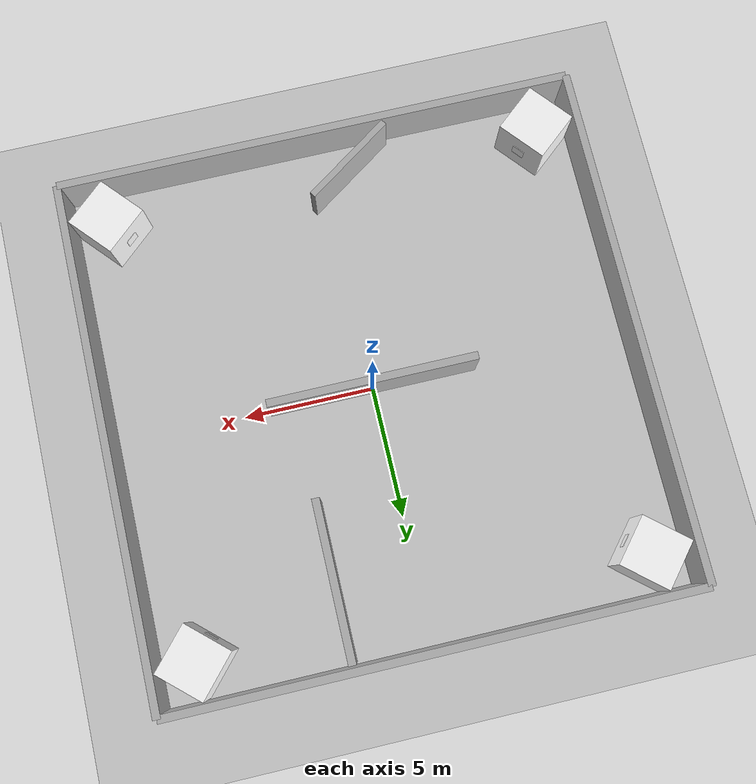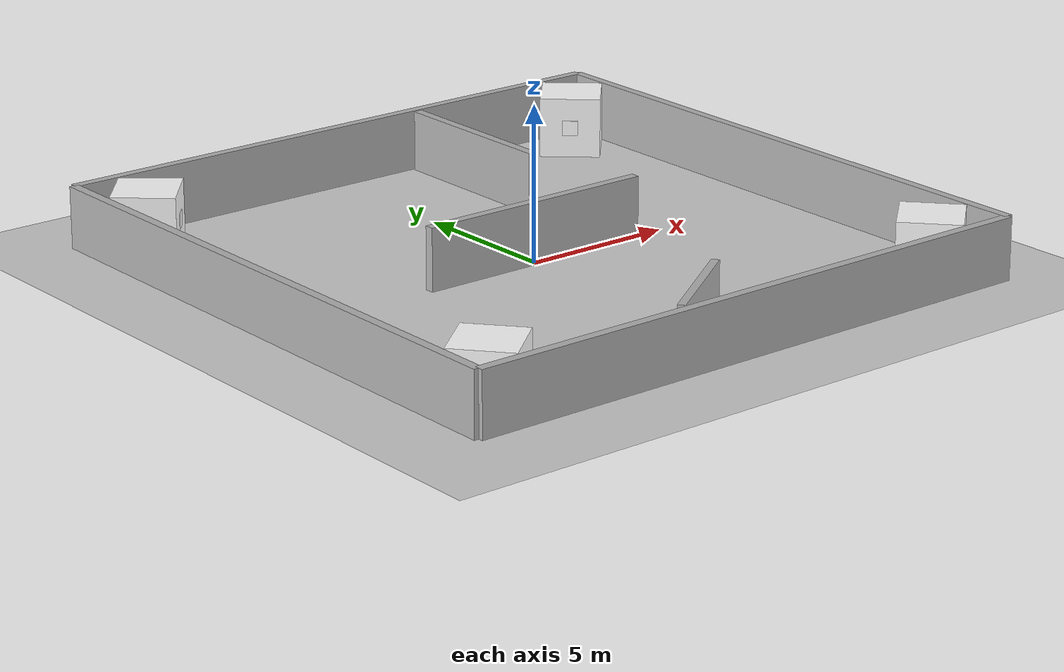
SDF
<?xml version="1.0"?>
<sdf version='1.10'>
  <world name='empty'>
    <physics name='1ms' type='ignored'>
      <max_step_size>0.001</max_step_size>
      <real_time_factor>1</real_time_factor>
      <real_time_update_rate>1000</real_time_update_rate>
    </physics>
    <plugin name='gz::sim::systems::Physics' filename='gz-sim-physics-system'/>
    <plugin name='gz::sim::systems::UserCommands' filename='gz-sim-user-commands-system'/>
    <plugin name='gz::sim::systems::SceneBroadcaster' filename='gz-sim-scene-broadcaster-system'/>
    <plugin name='gz::sim::systems::Contact' filename='gz-sim-contact-system'/>
    <gravity>0 0 -9.8</gravity>
    <magnetic_field>5.56e-06 2.28e-05 -4.23e-05</magnetic_field>
    <atmosphere type='adiabatic'/>
    <scene>
      <ambient>0.4 0.4 0.4 1</ambient>
      <background>0.7 0.7 0.7 1</background>
      <shadows>true</shadows>
    </scene>

    <!-- ground unchanged -->
    <model name='ground_plane'>
      <static>true</static>
      <link name='link'>
        <collision name='collision'>
          <geometry>
            <plane>
              <normal>0 0 1</normal>
              <size>100 100</size>
            </plane>
          </geometry>
        </collision>
        <visual name='visual'>
          <geometry>
            <plane>
              <normal>0 0 1</normal>
              <size>100 100</size>
            </plane>
          </geometry>
          <material>
            <ambient>0.8 0.8 0.8 1</ambient>
            <diffuse>0.8 0.8 0.8 1</diffuse>
            <specular>0.8 0.8 0.8 1</specular>
          </material>
        </visual>
      </link>
    </model>

    <model name='wall_north'>
      <static>true</static>
      <pose>0 10 1 0 0 0</pose>
      <link name='link'>
        <visual name='visual'>
          <geometry><box><size>20 0.3 2</size></box></geometry>
          <material>
            <ambient>0.7 0.7 0.7 1</ambient>
            <diffuse>0.7 0.7 0.7 1</diffuse>
            <specular>0.1 0.1 0.1 1</specular>
          </material>
        </visual>
        <collision name='collision'>
          <geometry><box><size>20 0.3 2</size></box></geometry>
        </collision>
      </link>
    </model>

    <model name='wall_south'>
      <static>true</static>
      <pose>0 -10 1 0 0 0</pose>
      <link name='link'>
        <visual name='visual'>
          <geometry><box><size>20 0.3 2</size></box></geometry>
          <material>
            <ambient>0.7 0.7 0.7 1</ambient>
            <diffuse>0.7 0.7 0.7 1</diffuse>
            <specular>0.1 0.1 0.1 1</specular>
          </material>
        </visual>
        <collision name='collision'>
          <geometry><box><size>20 0.3 2</size></box></geometry>
        </collision>
      </link>
    </model>

    <model name='wall_east'>
      <static>true</static>
      <pose>10 0 1 0 0 0</pose>
      <link name='link'>
        <visual name='visual'>
          <geometry><box><size>0.3 20 2</size></box></geometry>
          <material>
            <ambient>0.7 0.7 0.7 1</ambient>
            <diffuse>0.7 0.7 0.7 1</diffuse>
            <specular>0.1 0.1 0.1 1</specular>
          </material>
        </visual>
        <collision name='collision'>
          <geometry><box><size>0.3 20 2</size></box></geometry>
        </collision>
      </link>
    </model>

    <model name='wall_west'>
      <static>true</static>
      <pose>-10 0 1 0 0 0</pose>
      <link name='link'>
        <visual name='visual'>
          <geometry><box><size>0.3 20 2</size></box></geometry>
          <material>
            <ambient>0.7 0.7 0.7 1</ambient>
            <diffuse>0.7 0.7 0.7 1</diffuse>
            <specular>0.1 0.1 0.1 1</specular>
          </material>
        </visual>
        <collision name='collision'>
          <geometry><box><size>0.3 20 2</size></box></geometry>
        </collision>
      </link>
    </model>

    <model name='inner_wall_1'>
      <static>true</static>
      <pose>0 0 1 0 0 0</pose>
      <link name='link'>
        <visual name='visual'>
          <geometry><box><size>8 0.3 2</size></box></geometry>
          <material>
            <ambient>0.7 0.7 0.7 1</ambient>
            <diffuse>0.7 0.7 0.7 1</diffuse>
            <specular>0.1 0.1 0.1 1</specular>
          </material>
        </visual>
        <collision name='collision'>
          <geometry><box><size>8 0.3 2</size></box></geometry>
        </collision>
      </link>
    </model>

    <model name='inner_wall_2'>
      <static>true</static>
      <pose>3 6.76747 1 0 0 0</pose>
      <link name='link'>
        <visual name='visual'>
          <geometry><box><size>0.3 6 2</size></box></geometry>
          <material>
            <ambient>0.7 0.7 0.7 1</ambient>
            <diffuse>0.7 0.7 0.7 1</diffuse>
            <specular>0.1 0.1 0.1 1</specular>
          </material>
        </visual>
        <collision name='collision'>
          <geometry><box><size>0.3 6 2</size></box></geometry>
        </collision>
      </link>
    </model>

    <model name='inner_wall_3'>
      <static>true</static>
      <pose>-1.0469 -8.58647 1 0 0 0.6</pose>
      <link name='link'>
        <visual name='visual'>
          <geometry><box><size>4 0.25 2</size></box></geometry>
          <material>
            <ambient>0.7 0.7 0.7 1</ambient>
            <diffuse>0.7 0.7 0.7 1</diffuse>
            <specular>0.1 0.1 0.1 1</specular>
          </material>
        </visual>
        <collision name='collision'>
          <geometry><box><size>4 0.25 2</size></box></geometry>
        </collision>
      </link>
    </model>

    <model name='aruco_box'>
      <pose>-8.40 8.40 1.0 0 0 -0.70</pose>
      <link name="box_link">
        <inertial>
          <mass>10.0</mass>
          <inertia> <ixx>1.66</ixx><ixy>0</ixy><ixz>0</ixz>
            <iyy>1.66</iyy><iyz>0</iyz>
            <izz>1.66</izz>
          </inertia>
        </inertial>
        <visual name="visual">
          <geometry><box><size>2.0 2.0 2.0</size></box></geometry>
          <material><ambient>1 1 1 1</ambient><diffuse>1 1 1 1</diffuse></material>
        </visual>
        <collision name="collision">
          <geometry><box><size>2.0 2.0 2.0</size></box></geometry>
        </collision>
      </link>
      <include>
        <uri>model://aruco_marker_0</uri>
        <name>marker_0</name>
        <pose>1.01 0 0 3.14159 1.5707 0</pose>
      </include>
      <joint name="joint_0" type="fixed">
        <parent>box_link</parent>
        <child>marker_0::link</child>
      </joint>
    </model>

    <model name='aruco_box_1'>
      <pose>8.40 8.40 1.0 0 0 -2.30</pose>
      <link name="box_link">
        <inertial>
          <mass>10.0</mass>
          <inertia>
            <ixx>1.66</ixx><ixy>0</ixy><ixz>0</ixz>
            <iyy>1.66</iyy><iyz>0</iyz>
            <izz>1.66</izz>
          </inertia>
        </inertial>
        <visual name="visual">
          <geometry><box><size>2.0 2.0 2.0</size></box></geometry>
          <material><ambient>1 1 1 1</ambient><diffuse>1 1 1 1</diffuse></material>
        </visual>
        <collision name="collision">
          <geometry><box><size>2.0 2.0 2.0</size></box></geometry>
        </collision>
      </link>
      <include>
        <uri>model://aruco_marker_1</uri>
        <name>marker_1</name>
        <pose>1.01 0 0 3.14159 1.5707 0</pose>
      </include>
      <joint name="joint_1" type="fixed">
        <parent>box_link</parent>
        <child>marker_1::link</child>
      </joint>
    </model>

    <model name='aruco_box_2'>
      <pose>8.40 -8.40 1.0 0 0 2.30</pose>
      <link name="box_link">
        <inertial>
          <mass>10.0</mass>
          <inertia>
            <ixx>1.66</ixx><ixy>0</ixy><ixz>0</ixz>
            <iyy>1.66</iyy><iyz>0</iyz>
            <izz>1.66</izz>
          </inertia>
        </inertial>
        <visual name="visual">
          <geometry><box><size>2.0 2.0 2.0</size></box></geometry>
          <material><ambient>1 1 1 1</ambient><diffuse>1 1 1 1</diffuse></material>
        </visual>
        <collision name="collision">
          <geometry><box><size>2.0 2.0 2.0</size></box></geometry>
        </collision>
      </link>
      <include>
        <uri>model://aruco_marker_2</uri>
        <name>marker_2</name>
        <pose>1.01 0 0 3.14159 1.5707 0</pose>
      </include>
      <joint name="joint_2" type="fixed">
        <parent>box_link</parent>
        <child>marker_2::link</child>
      </joint>
    </model>

    <model name='aruco_box_3'>
      <pose>-8.40 -8.40 1.0 0 0 0.70</pose>
      <link name="box_link">
        <inertial>
          <mass>10.0</mass>
          <inertia>
            <ixx>1.66</ixx><ixy>0</ixy><ixz>0</ixz>
            <iyy>1.66</iyy><iyz>0</iyz>
            <izz>1.66</izz>
          </inertia>
        </inertial>
        <visual name="visual">
          <geometry><box><size>2.0 2.0 2.0</size></box></geometry>
          <material><ambient>1 1 1 1</ambient><diffuse>1 1 1 1</diffuse></material>
        </visual>
        <collision name="collision">
          <geometry><box><size>2.0 2.0 2.0</size></box></geometry>
        </collision>
      </link>
      <include>
        <uri>model://aruco_marker_3</uri>
        <name>marker_3</name>
        <pose>1.01 0 0 3.14159 1.5707 0</pose>
      </include>
      <joint name="joint_3" type="fixed">
        <parent>box_link</parent>
        <child>marker_3::link</child>
      </joint>
          </model>

    <light name='sun' type='directional'>
      <pose>0 0 10 0 0 0</pose>
      <direction>-0.5 0.1 -0.9</direction>
      <diffuse>0.8 0.8 0.8 1</diffuse>
      <specular>0.2 0.2 0.2 1</specular>
    </light>

  </world>
</sdf>

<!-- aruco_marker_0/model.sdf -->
<sdf version="1.6">
  <model name="aruco_marker_0">
    <static>true</static>
    <link name="link">
      <visual name="visual">
        <geometry>
          <box>
            <size>0.5 0.5 0.02</size> </box>
        </geometry>
        <material>
          <diffuse>1.0 1.0 1.0 1.0</diffuse> <pbr>
            <metal>
              <albedo_map>../textures/marker_0.png</albedo_map>
            </metal>
          </pbr>
        </material>
      </visual>
      <collision name="collision">
        <geometry>
          <box>
            <size>0.5 0.5 0.02</size>
          </box>
        </geometry>
      </collision>
    </link>
  </model>
</sdf>

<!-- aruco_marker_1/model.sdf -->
<sdf version="1.6">
  <model name="aruco_marker_1">
    <static>true</static>
    <link name="link">
      <visual name="visual">
        <geometry>
          <box>
            <size>0.5 0.5 0.02</size> </box>
        </geometry>
        <material>
          <diffuse>1.0 1.0 1.0 1.0</diffuse> <pbr>
            <metal>
              <albedo_map>../textures/marker_1.png</albedo_map>
            </metal>
          </pbr>
        </material>
      </visual>
      <collision name="collision">
        <geometry>
          <box>
            <size>0.5 0.5 0.02</size>
          </box>
        </geometry>
      </collision>
    </link>
  </model>
</sdf>

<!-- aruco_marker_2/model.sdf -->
<sdf version="1.6">
  <model name="aruco_marker_2">
    <static>true</static>
    <link name="link">
      <visual name="visual">
        <geometry>
          <box>
            <size>0.5 0.5 0.02</size> </box>
        </geometry>
        <material>
          <diffuse>1.0 1.0 1.0 1.0</diffuse> <pbr>
            <metal>
              <albedo_map>../textures/marker_2.png</albedo_map>
            </metal>
          </pbr>
        </material>
      </visual>
      <collision name="collision">
        <geometry>
          <box>
            <size>0.5 0.5 0.02</size>
          </box>
        </geometry>
      </collision>
    </link>
  </model>
</sdf>

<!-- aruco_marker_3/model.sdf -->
<sdf version="1.6">
  <model name="aruco_marker_3">
    <static>true</static>
    <link name="link">
      <visual name="visual">
        <geometry>
          <box>
            <size>0.5 0.5 0.02</size> </box>
        </geometry>
        <material>
          <diffuse>1.0 1.0 1.0 1.0</diffuse> <pbr>
            <metal>
              <albedo_map>../textures/marker_3.png</albedo_map>
            </metal>
          </pbr>
        </material>
      </visual>
      <collision name="collision">
        <geometry>
          <box>
            <size>0.5 0.5 0.02</size>
          </box>
        </geometry>
      </collision>
    </link>
  </model>
</sdf>
